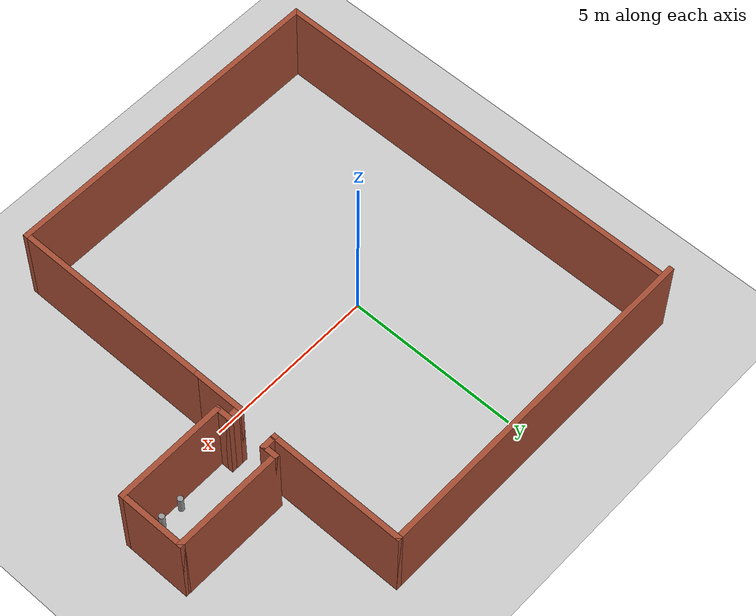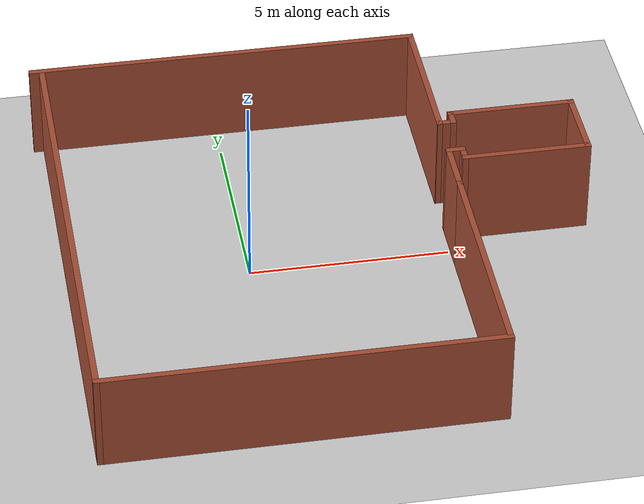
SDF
<sdf version="1.7">
 <world name="default">
  <light name="sun" type="directional">
   <pose>0 0 10 0 -0 0</pose>
   <diffuse>0.8 0.8 0.8 1</diffuse>
   <specular>0.2 0.2 0.2 1</specular>
   <attenuation>
    <range>1000</range>
    <constant>0.9</constant>
    <linear>0.01</linear>
    <quadratic>0.001</quadratic>
   </attenuation>
   <direction>-0.5 0.1 -0.9</direction>
   <spot><inner_angle>0</inner_angle><outer_angle>0</outer_angle><falloff>0</falloff></spot>
  </light>
  <model name="ground_plane">
   <static>1</static>
   <link name="link">
    <collision name="collision">
     <geometry><plane><normal>0 0 1</normal><size>100 100</size></plane></geometry>
     <surface><friction><ode><mu>100</mu><mu2>50</mu2></ode></friction></surface>
    </collision>
    <visual name="visual">
     <cast_shadows>0</cast_shadows>
     <geometry><plane><normal>0 0 1</normal><size>100 100</size></plane></geometry>
     <material>
      <script><uri>file://media/materials/scripts/gazebo.material</uri><name>Gazebo/Grey</name></script>
     </material>
    </visual>
   </link>
  </model>
  <gravity>0 0 -9.8</gravity>
  <magnetic_field>6e-06 2.3e-05 -4.2e-05</magnetic_field>
  <atmosphere type="adiabatic"/>
  <physics type="ode">
   <max_step_size>0.001</max_step_size>
   <real_time_factor>1</real_time_factor>
   <real_time_update_rate>1000</real_time_update_rate>
  </physics>
  <scene><ambient>0.4 0.4 0.4 1</ambient><background>0.7 0.7 0.7 1</background><shadows>1</shadows></scene>
  <audio><device>default</device></audio>
  <spherical_coordinates>
   <surface_model>EARTH_WGS84</surface_model>
   <latitude_deg>0</latitude_deg>
   <longitude_deg>0</longitude_deg>
   <elevation>0</elevation>
   <heading_deg>0</heading_deg>
  </spherical_coordinates>
  <model name="test5">
   <pose>1.93796 0.56574 0 0 -0 0</pose>
   <link name="Wall_0">
    <collision name="Wall_0_Collision">
     <geometry><box><size>10 0.15 2.5</size></box></geometry>
     <pose>0 0 1.25 0 -0 0</pose>
    </collision>
    <visual name="Wall_0_Visual">
     <pose>0 0 1.25 0 -0 0</pose>
     <geometry><box><size>10 0.15 2.5</size></box></geometry>
     <material>
      <script><uri>file://media/materials/scripts/gazebo.material</uri><name>Gazebo/Bricks</name></script>
      <ambient>1 1 1 1</ambient>
     </material>
     <meta><layer>0</layer></meta>
    </visual>
    <pose>-1.725 5.3625 0 0 -0 0</pose>
   </link>
   <link name="Wall_1">
    <collision name="Wall_1_Collision">
     <geometry><box><size>4 0.15 2.5</size></box></geometry>
     <pose>0 0 1.25 0 -0 0</pose>
    </collision>
    <visual name="Wall_1_Visual">
     <pose>0 0 1.25 0 -0 0</pose>
     <geometry><box><size>4 0.15 2.5</size></box></geometry>
     <material>
      <script><uri>file://media/materials/scripts/gazebo.material</uri><name>Gazebo/Bricks</name></script>
      <ambient>1 1 1 1</ambient>
     </material>
     <meta><layer>0</layer></meta>
    </visual>
    <pose>3.2 3.4375 0 0 -0 -1.5708</pose>
   </link>
   <link name="Wall_18">
    <collision name="Wall_18_Collision">
     <geometry><box><size>0.5 0.15 2.5</size></box></geometry>
     <pose>0 0 1.25 0 -0 0</pose>
    </collision>
    <visual name="Wall_18_Visual">
     <pose>0 0 1.25 0 -0 0</pose>
     <geometry><box><size>0.5 0.15 2.5</size></box></geometry>
     <material>
      <script><uri>file://media/materials/scripts/gazebo.material</uri><name>Gazebo/Bricks</name></script>
      <ambient>1 1 1 1</ambient>
     </material>
     <meta><layer>0</layer></meta>
    </visual>
    <pose>3.55 1.6875 0 0 -0 1.5708</pose>
   </link>
   <link name="Wall_19">
    <collision name="Wall_19_Collision">
     <geometry><box><size>3.25 0.15 2.5</size></box></geometry>
     <pose>0 0 1.25 0 -0 0</pose>
    </collision>
    <visual name="Wall_19_Visual">
     <pose>0 0 1.25 0 -0 0</pose>
     <geometry><box><size>3.25 0.15 2.5</size></box></geometry>
     <material>
      <script><uri>file://media/materials/scripts/gazebo.material</uri><name>Gazebo/Bricks</name></script>
      <ambient>1 1 1 1</ambient>
     </material>
     <meta><layer>0</layer></meta>
    </visual>
    <pose>5.1 1.8625 0 0 -0 0</pose>
   </link>
   <link name="Wall_27">
    <collision name="Wall_27_Collision">
     <geometry><box><size>2 0.15 2.5</size></box></geometry>
     <pose>0 0 1.25 0 -0 0</pose>
    </collision>
    <visual name="Wall_27_Visual">
     <pose>0 0 1.25 0 -0 0</pose>
     <geometry><box><size>2 0.15 2.5</size></box></geometry>
     <material>
      <script><uri>file://media/materials/scripts/gazebo.material</uri><name>Gazebo/Bricks</name></script>
      <ambient>1 1 1 1</ambient>
     </material>
     <meta><layer>0</layer></meta>
    </visual>
    <pose>6.65 0.9375 0 0 -0 -1.5708</pose>
   </link>
   <link name="Wall_28">
    <collision name="Wall_28_Collision">
     <geometry><box><size>3.25 0.15 2.5</size></box></geometry>
     <pose>0 0 1.25 0 -0 0</pose>
    </collision>
    <visual name="Wall_28_Visual">
     <pose>0 0 1.25 0 -0 0</pose>
     <geometry><box><size>3.25 0.15 2.5</size></box></geometry>
     <material>
      <script><uri>file://media/materials/scripts/gazebo.material</uri><name>Gazebo/Bricks</name></script>
      <ambient>1 1 1 1</ambient>
     </material>
     <meta><layer>0</layer></meta>
    </visual>
    <pose>5.1 0.0125 0 0 -0 3.14159</pose>
   </link>
   <link name="Wall_29">
    <collision name="Wall_29_Collision">
     <geometry><box><size>0.5 0.15 2.5</size></box></geometry>
     <pose>0 0 1.25 0 -0 0</pose>
    </collision>
    <visual name="Wall_29_Visual">
     <pose>0 0 1.25 0 -0 0</pose>
     <geometry><box><size>0.5 0.15 2.5</size></box></geometry>
     <material>
      <script><uri>file://media/materials/scripts/gazebo.material</uri><name>Gazebo/Bricks</name></script>
      <ambient>1 1 1 1</ambient>
     </material>
     <meta><layer>0</layer></meta>
    </visual>
    <pose>3.55 0.1875 0 0 -0 1.5708</pose>
   </link>
   <link name="Wall_30">
    <collision name="Wall_30_Collision">
     <geometry><box><size>0.5 0.15 2.5</size></box></geometry>
     <pose>0 0 1.25 0 -0 0</pose>
    </collision>
    <visual name="Wall_30_Visual">
     <pose>0 0 1.25 0 -0 0</pose>
     <geometry><box><size>0.5 0.15 2.5</size></box></geometry>
     <material>
      <script><uri>file://media/materials/scripts/gazebo.material</uri><name>Gazebo/Bricks</name></script>
      <ambient>1 1 1 1</ambient>
     </material>
     <meta><layer>0</layer></meta>
    </visual>
    <pose>3.375 0.3625 0 0 -0 3.14159</pose>
   </link>
   <link name="Wall_31">
    <collision name="Wall_31_Collision">
     <geometry><box><size>1.5 0.15 2.5</size></box></geometry>
     <pose>0 0 1.25 0 -0 0</pose>
    </collision>
    <visual name="Wall_31_Visual">
     <pose>0 0 1.25 0 -0 0</pose>
     <geometry><box><size>1.5 0.15 2.5</size></box></geometry>
     <material>
      <script><uri>file://media/materials/scripts/gazebo.material</uri><name>Gazebo/Bricks</name></script>
      <ambient>1 1 1 1</ambient>
     </material>
     <meta><layer>0</layer></meta>
    </visual>
    <pose>3.2 -0.3125 0 0 -0 -1.5708</pose>
   </link>
   <link name="Wall_34">
    <collision name="Wall_34_Collision">
     <geometry><box><size>6 0.15 2.5</size></box></geometry>
     <pose>0 0 1.25 0 -0 0</pose>
    </collision>
    <visual name="Wall_34_Visual">
     <pose>0 0 1.25 0 -0 0</pose>
     <geometry><box><size>6 0.15 2.5</size></box></geometry>
     <material>
      <script><uri>file://media/materials/scripts/gazebo.material</uri><name>Gazebo/Bricks</name></script>
      <ambient>1 1 1 1</ambient>
     </material>
     <meta><layer>0</layer></meta>
    </visual>
    <pose>3.2 -3.9125 0 0 -0 -1.5708</pose>
   </link>
   <link name="Wall_35">
    <collision name="Wall_35_Collision">
     <geometry><box><size>9.75 0.15 2.5</size></box></geometry>
     <pose>0 0 1.25 0 -0 0</pose>
    </collision>
    <visual name="Wall_35_Visual">
     <pose>0 0 1.25 0 -0 0</pose>
     <geometry><box><size>9.75 0.15 2.5</size></box></geometry>
     <material>
      <script><uri>file://media/materials/scripts/gazebo.material</uri><name>Gazebo/Bricks</name></script>
      <ambient>1 1 1 1</ambient>
     </material>
     <meta><layer>0</layer></meta>
    </visual>
    <pose>-1.6 -6.8375 0 0 -0 3.14159</pose>
   </link>
   <link name="Wall_36">
    <collision name="Wall_36_Collision">
     <geometry><box><size>12.25 0.15 2.5</size></box></geometry>
     <pose>0 0 1.25 0 -0 0</pose>
    </collision>
    <visual name="Wall_36_Visual">
     <pose>0 0 1.25 0 -0 0</pose>
     <geometry><box><size>12.25 0.15 2.5</size></box></geometry>
     <material>
      <script><uri>file://media/materials/scripts/gazebo.material</uri><name>Gazebo/Bricks</name></script>
      <ambient>1 1 1 1</ambient>
     </material>
     <meta><layer>0</layer></meta>
    </visual>
    <pose>-6.4 -0.787499 0 0 -0 1.5708</pose>
   </link>
   <link name="Wall_4">
    <collision name="Wall_4_Collision">
     <geometry><box><size>0.5 0.15 2.5</size></box></geometry>
     <pose>0 0 1.25 0 -0 0</pose>
    </collision>
    <visual name="Wall_4_Visual">
     <pose>0 0 1.25 0 -0 0</pose>
     <geometry><box><size>0.5 0.15 2.5</size></box></geometry>
     <material>
      <script><uri>file://media/materials/scripts/gazebo.material</uri><name>Gazebo/Bricks</name></script>
      <ambient>1 1 1 1</ambient>
     </material>
     <meta><layer>0</layer></meta>
    </visual>
    <pose>3.375 1.5125 0 0 -0 0</pose>
   </link>
   <static>1</static>
  </model>
  <model name="human">
   <link name="link_0">
    <inertial>
     <mass>0.0249343</mass>
     <inertia>
      <ixx>0.00211672</ixx>
      <ixy>0</ixy>
      <ixz>0</ixz>
      <iyy>0.00211672</iyy>
      <iyz>0</iyz>
      <izz>7.77181e-05</izz>
     </inertia>
    </inertial>
    <pose>-3e-06 0 0 0 -0 0</pose>
    <visual name="visual">
     <geometry><cylinder><radius>0.0789546</radius><length>1</length></cylinder></geometry>
     <material>
      <lighting>1</lighting>
      <script><uri>file://media/materials/scripts/gazebo.material</uri><name>Gazebo/Grey</name></script>
      <shader type="pixel"/>
     </material>
    </visual>
    <collision name="collision">
     <geometry><cylinder><radius>0.078955</radius><length>1</length></cylinder></geometry>
     <surface>
      <friction>
       <ode><mu>1</mu><mu2>1</mu2><fdir1>0 0 0</fdir1><slip1>0</slip1><slip2>0</slip2></ode>
       <torsional>
        <coefficient>1</coefficient>
        <patch_radius>0</patch_radius>
        <surface_radius>0</surface_radius>
        <use_patch_radius>1</use_patch_radius>
        <ode><slip>0</slip></ode>
       </torsional>
      </friction>
      <bounce><restitution_coefficient>0</restitution_coefficient><threshold>1e+06</threshold></bounce>
      <contact>
       <collide_without_contact>0</collide_without_contact>
       <collide_without_contact_bitmask>1</collide_without_contact_bitmask>
       <collide_bitmask>1</collide_bitmask>
       <ode>
        <soft_cfm>0</soft_cfm>
        <soft_erp>0.2</soft_erp>
        <kp>1e+13</kp>
        <kd>1</kd>
        <max_vel>0.01</max_vel>
        <min_depth>0</min_depth>
       </ode>
       <bullet>
        <split_impulse>1</split_impulse>
        <split_impulse_penetration_threshold>-0.01</split_impulse_penetration_threshold>
        <soft_cfm>0</soft_cfm>
        <soft_erp>0.2</soft_erp>
        <kp>1e+13</kp>
        <kd>1</kd>
       </bullet>
      </contact>
     </surface>
    </collision>
   </link>
   <static>1</static>
   <pose>8.43988 2.24356 0 0 -0 0</pose>
  </model>
  <model name="human_clone">
   <link name="link_0">
    <inertial>
     <mass>0.0249343</mass>
     <inertia>
      <ixx>0.00211672</ixx>
      <ixy>0</ixy>
      <ixz>0</ixz>
      <iyy>0.00211672</iyy>
      <iyz>0</iyz>
      <izz>7.77181e-05</izz>
     </inertia>
    </inertial>
    <pose>-3e-06 0 0 0 -0 0</pose>
    <visual name="visual">
     <geometry><cylinder><radius>0.0789546</radius><length>1</length></cylinder></geometry>
     <material>
      <lighting>1</lighting>
      <script><uri>file://media/materials/scripts/gazebo.material</uri><name>Gazebo/Grey</name></script>
      <shader type="pixel"/>
     </material>
    </visual>
    <collision name="collision">
     <geometry><cylinder><radius>0.078955</radius><length>1</length></cylinder></geometry>
     <surface>
      <friction>
       <ode><mu>1</mu><mu2>1</mu2><fdir1>0 0 0</fdir1><slip1>0</slip1><slip2>0</slip2></ode>
       <torsional>
        <coefficient>1</coefficient>
        <patch_radius>0</patch_radius>
        <surface_radius>0</surface_radius>
        <use_patch_radius>1</use_patch_radius>
        <ode><slip>0</slip></ode>
       </torsional>
      </friction>
      <bounce><restitution_coefficient>0</restitution_coefficient><threshold>1e+06</threshold></bounce>
      <contact>
       <collide_without_contact>0</collide_without_contact>
       <collide_without_contact_bitmask>1</collide_without_contact_bitmask>
       <collide_bitmask>1</collide_bitmask>
       <ode>
        <soft_cfm>0</soft_cfm>
        <soft_erp>0.2</soft_erp>
        <kp>1e+13</kp>
        <kd>1</kd>
        <max_vel>0.01</max_vel>
        <min_depth>0</min_depth>
       </ode>
       <bullet>
        <split_impulse>1</split_impulse>
        <split_impulse_penetration_threshold>-0.01</split_impulse_penetration_threshold>
        <soft_cfm>0</soft_cfm>
        <soft_erp>0.2</soft_erp>
        <kp>1e+13</kp>
        <kd>1</kd>
       </bullet>
      </contact>
     </surface>
    </collision>
   </link>
   <static>1</static>
   <pose>7.94366 2.27512 0 0 -0 0</pose>
  </model>
  <model name="human_clone_0">
   <link name="link_0">
    <inertial>
     <mass>0.0249343</mass>
     <inertia>
      <ixx>0.00211672</ixx>
      <ixy>0</ixy>
      <ixz>0</ixz>
      <iyy>0.00211672</iyy>
      <iyz>0</iyz>
      <izz>7.77181e-05</izz>
     </inertia>
    </inertial>
    <pose>-3e-06 0 0 0 -0 0</pose>
    <visual name="visual">
     <geometry><cylinder><radius>0.0789546</radius><length>1</length></cylinder></geometry>
     <material>
      <lighting>1</lighting>
      <script><uri>file://media/materials/scripts/gazebo.material</uri><name>Gazebo/Grey</name></script>
      <shader type="pixel"/>
     </material>
    </visual>
    <collision name="collision">
     <geometry><cylinder><radius>0.078955</radius><length>1</length></cylinder></geometry>
     <surface>
      <friction>
       <ode><mu>1</mu><mu2>1</mu2><fdir1>0 0 0</fdir1><slip1>0</slip1><slip2>0</slip2></ode>
       <torsional>
        <coefficient>1</coefficient>
        <patch_radius>0</patch_radius>
        <surface_radius>0</surface_radius>
        <use_patch_radius>1</use_patch_radius>
        <ode><slip>0</slip></ode>
       </torsional>
      </friction>
      <bounce><restitution_coefficient>0</restitution_coefficient><threshold>1e+06</threshold></bounce>
      <contact>
       <collide_without_contact>0</collide_without_contact>
       <collide_without_contact_bitmask>1</collide_without_contact_bitmask>
       <collide_bitmask>1</collide_bitmask>
       <ode>
        <soft_cfm>0</soft_cfm>
        <soft_erp>0.2</soft_erp>
        <kp>1e+13</kp>
        <kd>1</kd>
        <max_vel>0.01</max_vel>
        <min_depth>0</min_depth>
       </ode>
       <bullet>
        <split_impulse>1</split_impulse>
        <split_impulse_penetration_threshold>-0.01</split_impulse_penetration_threshold>
        <soft_cfm>0</soft_cfm>
        <soft_erp>0.2</soft_erp>
        <kp>1e+13</kp>
        <kd>1</kd>
       </bullet>
      </contact>
     </surface>
    </collision>
   </link>
   <static>1</static>
   <pose>8.34524 1.04517 0 0 -0 0</pose>
  </model>
  <model name="human_clone_1">
   <link name="link_0">
    <inertial>
     <mass>0.0249343</mass>
     <inertia>
      <ixx>0.00211672</ixx>
      <ixy>0</ixy>
      <ixz>0</ixz>
      <iyy>0.00211672</iyy>
      <iyz>0</iyz>
      <izz>7.77181e-05</izz>
     </inertia>
    </inertial>
    <pose>-3e-06 0 0 0 -0 0</pose>
    <visual name="visual">
     <geometry><cylinder><radius>0.0789546</radius><length>1</length></cylinder></geometry>
     <material>
      <lighting>1</lighting>
      <script><uri>file://media/materials/scripts/gazebo.material</uri><name>Gazebo/Grey</name></script>
      <shader type="pixel"/>
     </material>
    </visual>
    <collision name="collision">
     <geometry><cylinder><radius>0.078955</radius><length>1</length></cylinder></geometry>
     <surface>
      <friction>
       <ode><mu>1</mu><mu2>1</mu2><fdir1>0 0 0</fdir1><slip1>0</slip1><slip2>0</slip2></ode>
       <torsional>
        <coefficient>1</coefficient>
        <patch_radius>0</patch_radius>
        <surface_radius>0</surface_radius>
        <use_patch_radius>1</use_patch_radius>
        <ode><slip>0</slip></ode>
       </torsional>
      </friction>
      <bounce><restitution_coefficient>0</restitution_coefficient><threshold>1e+06</threshold></bounce>
      <contact>
       <collide_without_contact>0</collide_without_contact>
       <collide_without_contact_bitmask>1</collide_without_contact_bitmask>
       <collide_bitmask>1</collide_bitmask>
       <ode>
        <soft_cfm>0</soft_cfm>
        <soft_erp>0.2</soft_erp>
        <kp>1e+13</kp>
        <kd>1</kd>
        <max_vel>0.01</max_vel>
        <min_depth>0</min_depth>
       </ode>
       <bullet>
        <split_impulse>1</split_impulse>
        <split_impulse_penetration_threshold>-0.01</split_impulse_penetration_threshold>
        <soft_cfm>0</soft_cfm>
        <soft_erp>0.2</soft_erp>
        <kp>1e+13</kp>
        <kd>1</kd>
       </bullet>
      </contact>
     </surface>
    </collision>
   </link>
   <static>1</static>
   <pose>8.42033 1.62004 0 0 -0 0</pose>
  </model>
  <model name="human_clone_2">
   <link name="link_0">
    <inertial>
     <mass>0.0249343</mass>
     <inertia>
      <ixx>0.00211672</ixx>
      <ixy>0</ixy>
      <ixz>0</ixz>
      <iyy>0.00211672</iyy>
      <iyz>0</iyz>
      <izz>7.77181e-05</izz>
     </inertia>
    </inertial>
    <pose>-3e-06 0 0 0 -0 0</pose>
    <visual name="visual">
     <geometry><cylinder><radius>0.0789546</radius><length>1</length></cylinder></geometry>
     <material>
      <lighting>1</lighting>
      <script><uri>file://media/materials/scripts/gazebo.material</uri><name>Gazebo/Grey</name></script>
      <shader type="pixel"/>
     </material>
    </visual>
    <collision name="collision">
     <geometry><cylinder><radius>0.078955</radius><length>1</length></cylinder></geometry>
     <surface>
      <friction>
       <ode><mu>1</mu><mu2>1</mu2><fdir1>0 0 0</fdir1><slip1>0</slip1><slip2>0</slip2></ode>
       <torsional>
        <coefficient>1</coefficient>
        <patch_radius>0</patch_radius>
        <surface_radius>0</surface_radius>
        <use_patch_radius>1</use_patch_radius>
        <ode><slip>0</slip></ode>
       </torsional>
      </friction>
      <bounce><restitution_coefficient>0</restitution_coefficient><threshold>1e+06</threshold></bounce>
      <contact>
       <collide_without_contact>0</collide_without_contact>
       <collide_without_contact_bitmask>1</collide_without_contact_bitmask>
       <collide_bitmask>1</collide_bitmask>
       <ode>
        <soft_cfm>0</soft_cfm>
        <soft_erp>0.2</soft_erp>
        <kp>1e+13</kp>
        <kd>1</kd>
        <max_vel>0.01</max_vel>
        <min_depth>0</min_depth>
       </ode>
       <bullet>
        <split_impulse>1</split_impulse>
        <split_impulse_penetration_threshold>-0.01</split_impulse_penetration_threshold>
        <soft_cfm>0</soft_cfm>
        <soft_erp>0.2</soft_erp>
        <kp>1e+13</kp>
        <kd>1</kd>
       </bullet>
      </contact>
     </surface>
    </collision>
   </link>
   <static>1</static>
   <pose>5.70975 2.28125 0 0 -0 0</pose>
  </model>
  <model name="human_clone_3">
   <link name="link_0">
    <inertial>
     <mass>0.0249343</mass>
     <inertia>
      <ixx>0.00211672</ixx>
      <ixy>0</ixy>
      <ixz>0</ixz>
      <iyy>0.00211672</iyy>
      <iyz>0</iyz>
      <izz>7.77181e-05</izz>
     </inertia>
    </inertial>
    <pose>-3e-06 0 0 0 -0 0</pose>
    <visual name="visual">
     <geometry><cylinder><radius>0.0789546</radius><length>1</length></cylinder></geometry>
     <material>
      <lighting>1</lighting>
      <script><uri>file://media/materials/scripts/gazebo.material</uri><name>Gazebo/Grey</name></script>
      <shader type="pixel"/>
     </material>
    </visual>
    <collision name="collision">
     <geometry><cylinder><radius>0.078955</radius><length>1</length></cylinder></geometry>
     <surface>
      <friction>
       <ode><mu>1</mu><mu2>1</mu2><fdir1>0 0 0</fdir1><slip1>0</slip1><slip2>0</slip2></ode>
       <torsional>
        <coefficient>1</coefficient>
        <patch_radius>0</patch_radius>
        <surface_radius>0</surface_radius>
        <use_patch_radius>1</use_patch_radius>
        <ode><slip>0</slip></ode>
       </torsional>
      </friction>
      <bounce><restitution_coefficient>0</restitution_coefficient><threshold>1e+06</threshold></bounce>
      <contact>
       <collide_without_contact>0</collide_without_contact>
       <collide_without_contact_bitmask>1</collide_without_contact_bitmask>
       <collide_bitmask>1</collide_bitmask>
       <ode>
        <soft_cfm>0</soft_cfm>
        <soft_erp>0.2</soft_erp>
        <kp>1e+13</kp>
        <kd>1</kd>
        <max_vel>0.01</max_vel>
        <min_depth>0</min_depth>
       </ode>
       <bullet>
        <split_impulse>1</split_impulse>
        <split_impulse_penetration_threshold>-0.01</split_impulse_penetration_threshold>
        <soft_cfm>0</soft_cfm>
        <soft_erp>0.2</soft_erp>
        <kp>1e+13</kp>
        <kd>1</kd>
       </bullet>
      </contact>
     </surface>
    </collision>
   </link>
   <static>1</static>
   <pose>6.63319 2.27465 0 0 -0 0</pose>
  </model>
  <model name="human_clone_4">
   <link name="link_0">
    <inertial>
     <mass>0.0249343</mass>
     <inertia>
      <ixx>0.00211672</ixx>
      <ixy>0</ixy>
      <ixz>0</ixz>
      <iyy>0.00211672</iyy>
      <iyz>0</iyz>
      <izz>7.77181e-05</izz>
     </inertia>
    </inertial>
    <pose>-3e-06 0 0 0 -0 0</pose>
    <visual name="visual">
     <geometry><cylinder><radius>0.0789546</radius><length>1</length></cylinder></geometry>
     <material>
      <lighting>1</lighting>
      <script><uri>file://media/materials/scripts/gazebo.material</uri><name>Gazebo/Grey</name></script>
      <shader type="pixel"/>
     </material>
    </visual>
    <collision name="collision">
     <geometry><cylinder><radius>0.078955</radius><length>1</length></cylinder></geometry>
     <surface>
      <friction>
       <ode><mu>1</mu><mu2>1</mu2><fdir1>0 0 0</fdir1><slip1>0</slip1><slip2>0</slip2></ode>
       <torsional>
        <coefficient>1</coefficient>
        <patch_radius>0</patch_radius>
        <surface_radius>0</surface_radius>
        <use_patch_radius>1</use_patch_radius>
        <ode><slip>0</slip></ode>
       </torsional>
      </friction>
      <bounce><restitution_coefficient>0</restitution_coefficient><threshold>1e+06</threshold></bounce>
      <contact>
       <collide_without_contact>0</collide_without_contact>
       <collide_without_contact_bitmask>1</collide_without_contact_bitmask>
       <collide_bitmask>1</collide_bitmask>
       <ode>
        <soft_cfm>0</soft_cfm>
        <soft_erp>0.2</soft_erp>
        <kp>1e+13</kp>
        <kd>1</kd>
        <max_vel>0.01</max_vel>
        <min_depth>0</min_depth>
       </ode>
       <bullet>
        <split_impulse>1</split_impulse>
        <split_impulse_penetration_threshold>-0.01</split_impulse_penetration_threshold>
        <soft_cfm>0</soft_cfm>
        <soft_erp>0.2</soft_erp>
        <kp>1e+13</kp>
        <kd>1</kd>
       </bullet>
      </contact>
     </surface>
    </collision>
   </link>
   <static>1</static>
   <pose>7.72096 0.780167 0 0 -0 0</pose>
  </model>
  <model name="human_clone_5">
   <link name="link_0">
    <inertial>
     <mass>0.0249343</mass>
     <inertia>
      <ixx>0.00211672</ixx>
      <ixy>0</ixy>
      <ixz>0</ixz>
      <iyy>0.00211672</iyy>
      <iyz>0</iyz>
      <izz>7.77181e-05</izz>
     </inertia>
    </inertial>
    <pose>-3e-06 0 0 0 -0 0</pose>
    <visual name="visual">
     <geometry><cylinder><radius>0.0789546</radius><length>1</length></cylinder></geometry>
     <material>
      <lighting>1</lighting>
      <script><uri>file://media/materials/scripts/gazebo.material</uri><name>Gazebo/Grey</name></script>
      <shader type="pixel"/>
     </material>
    </visual>
    <collision name="collision">
     <geometry><cylinder><radius>0.078955</radius><length>1</length></cylinder></geometry>
     <surface>
      <friction>
       <ode><mu>1</mu><mu2>1</mu2><fdir1>0 0 0</fdir1><slip1>0</slip1><slip2>0</slip2></ode>
       <torsional>
        <coefficient>1</coefficient>
        <patch_radius>0</patch_radius>
        <surface_radius>0</surface_radius>
        <use_patch_radius>1</use_patch_radius>
        <ode><slip>0</slip></ode>
       </torsional>
      </friction>
      <bounce><restitution_coefficient>0</restitution_coefficient><threshold>1e+06</threshold></bounce>
      <contact>
       <collide_without_contact>0</collide_without_contact>
       <collide_without_contact_bitmask>1</collide_without_contact_bitmask>
       <collide_bitmask>1</collide_bitmask>
       <ode>
        <soft_cfm>0</soft_cfm>
        <soft_erp>0.2</soft_erp>
        <kp>1e+13</kp>
        <kd>1</kd>
        <max_vel>0.01</max_vel>
        <min_depth>0</min_depth>
       </ode>
       <bullet>
        <split_impulse>1</split_impulse>
        <split_impulse_penetration_threshold>-0.01</split_impulse_penetration_threshold>
        <soft_cfm>0</soft_cfm>
        <soft_erp>0.2</soft_erp>
        <kp>1e+13</kp>
        <kd>1</kd>
       </bullet>
      </contact>
     </surface>
    </collision>
   </link>
   <static>1</static>
   <pose>7.09415 0.777369 0 0 -0 0</pose>
  </model>
 </world>
</sdf>
